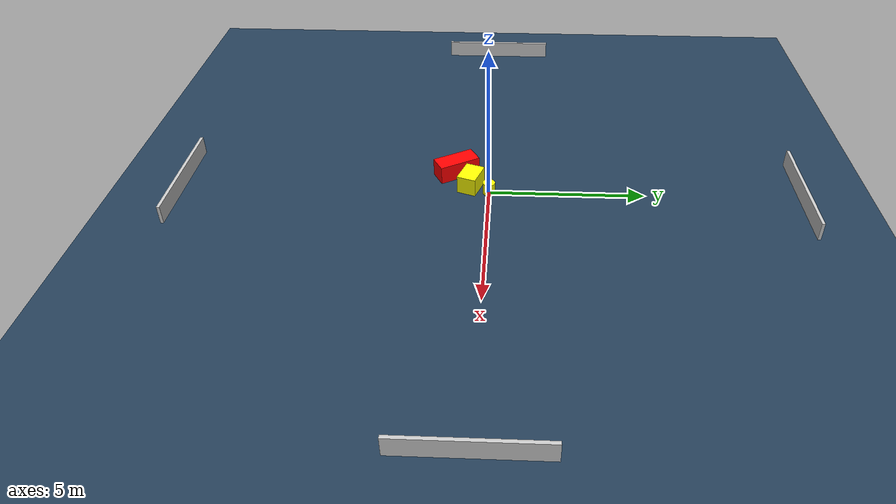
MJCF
<?xml version="1.0" ?>
<mujoco model="generated_environment">
  <option timestep="0.01" integrator="RK4" cone="elliptic"/>
  <default>
    <geom density="1"/>
  </default>
  <asset>
    <texture builtin="gradient" height="3072" name="skybox" rgb1="0.3 0.5 0.7" rgb2="0 0 0" type="skybox" width="512"/>
    <texture builtin="checker" height="300" name="groundplane" rgb1="0.2 0.3 0.4" rgb2="0.1 0.2 0.3" type="2d" width="300"/>
    <material name="groundplane" reflectance="0.2" texrepeat="5 5" texture="groundplane"/>
  </asset>
  <worldbody>
    <light dir="0 0 -1" directional="true" pos="0 0 1.5"/>
    <geom condim="3" friction="0.5 0.005 0.001" material="groundplane" name="floor" pos="0 0 0" size="0 0 0.05" type="plane"/>
    <body name="walls">
      <geom name="wall_1" condim="4" pos="-10.0 0.0 0.3" rgba="0.800000011920929 0.800000011920929 0.800000011920929 1.0" size="0.05 2.0 0.3" type="box"/>
      <geom name="wall_2" condim="4" pos="10.0 0.0 0.3" rgba="0.800000011920929 0.800000011920929 0.800000011920929 1.0" size="0.05 2.0 0.3" type="box"/>
      <geom name="wall_3" condim="4" pos="0.0 -10.0 0.3" rgba="0.800000011920929 0.800000011920929 0.800000011920929 1.0" size="2.0 0.05 0.3" type="box"/>
      <geom name="wall_4" condim="4" pos="0.0 10.0 0.3" rgba="0.800000011920929 0.800000011920929 0.800000011920929 1.0" size="2.0 0.05 0.3" type="box"/>
    </body>
    <body name="robot">
      <joint name="joint_x" type="slide" pos="0 0 0" axis="1 0 0"/>
      <joint name="joint_y" type="slide" pos="0 0 0" axis="0 1 0"/>
      <geom name="robot" type="cylinder" pos="0.0 0.0 0.2" size="0.2 0.2 0.0" mass="5.0" friction="1.0 0.005 0.0001" condim="4" rgba="1.0 1.0 0.0 1.0"/>
    </body>
    <body name="obstacle_1_movable">
      <geom name="obstacle_1_movable" condim="4" pos="-0.2859933580785927 -0.5955413267665338 0.3" euler="0 0 160.88425590046222" friction="0.0 0.005 0.001" rgba="1.0 1.0 0.0 1.0" size="0.42311193545027576 0.3119773295378945 0.3" type="box" mass="0.1"/>
      <joint type="free"/>
    </body>
    <body name="obstacle_2_static">
      <geom name="obstacle_2_static" condim="4" pos="-1.0455098390571242 -1.1188780148922681 0.3" euler="0 0 299.61335871527467" friction="0.0 0.005 0.001" rgba="1.0 0.0 0.0 1.0" size="0.690201361959484 0.3114006617457988 0.3" type="box"/>
    </body>
  </worldbody>
  <actuator>
    <motor name="actuator_x" joint="joint_x" gear="1" ctrlrange="-1 1"/>
    <motor name="actuator_y" joint="joint_y" gear="1" ctrlrange="-1 1"/>
  </actuator>
</mujoco>
